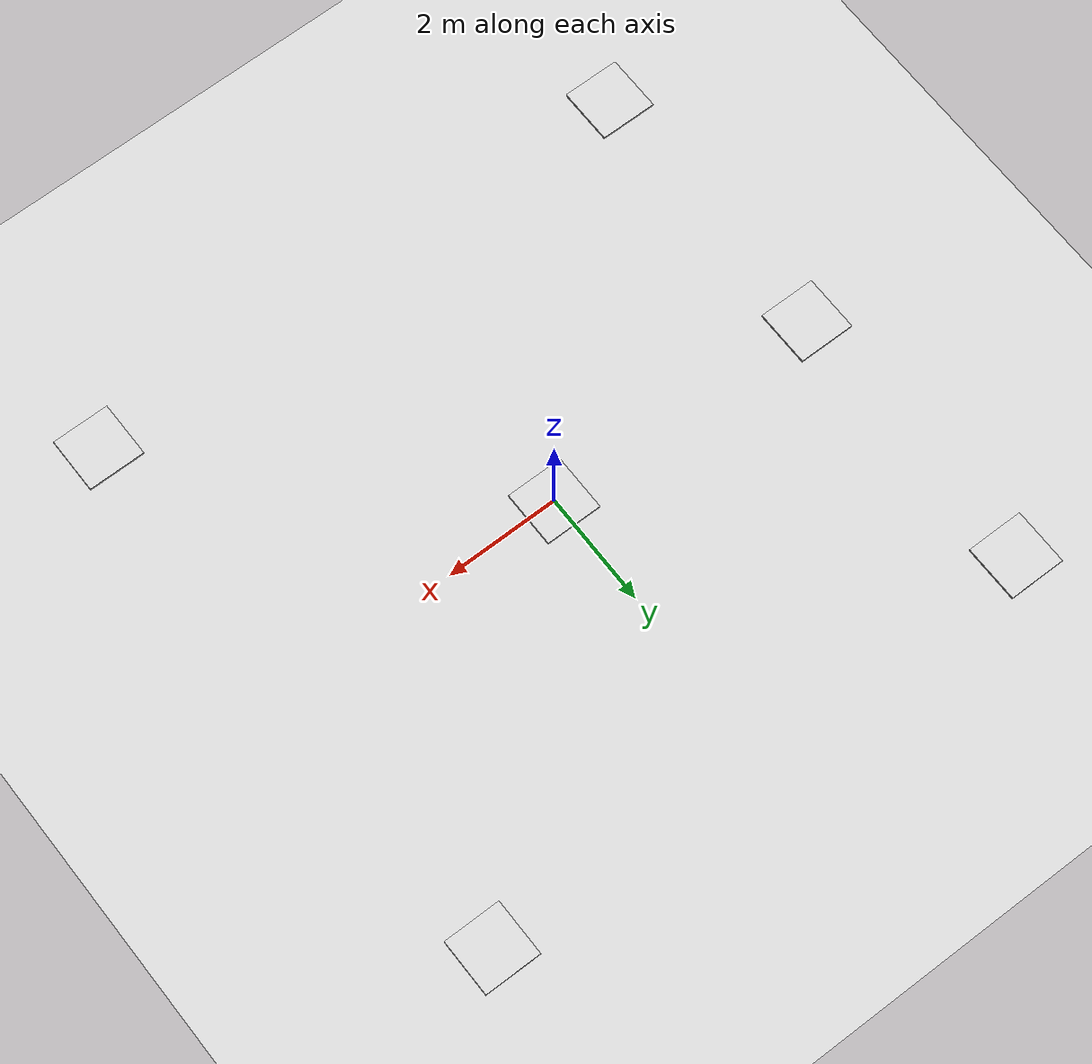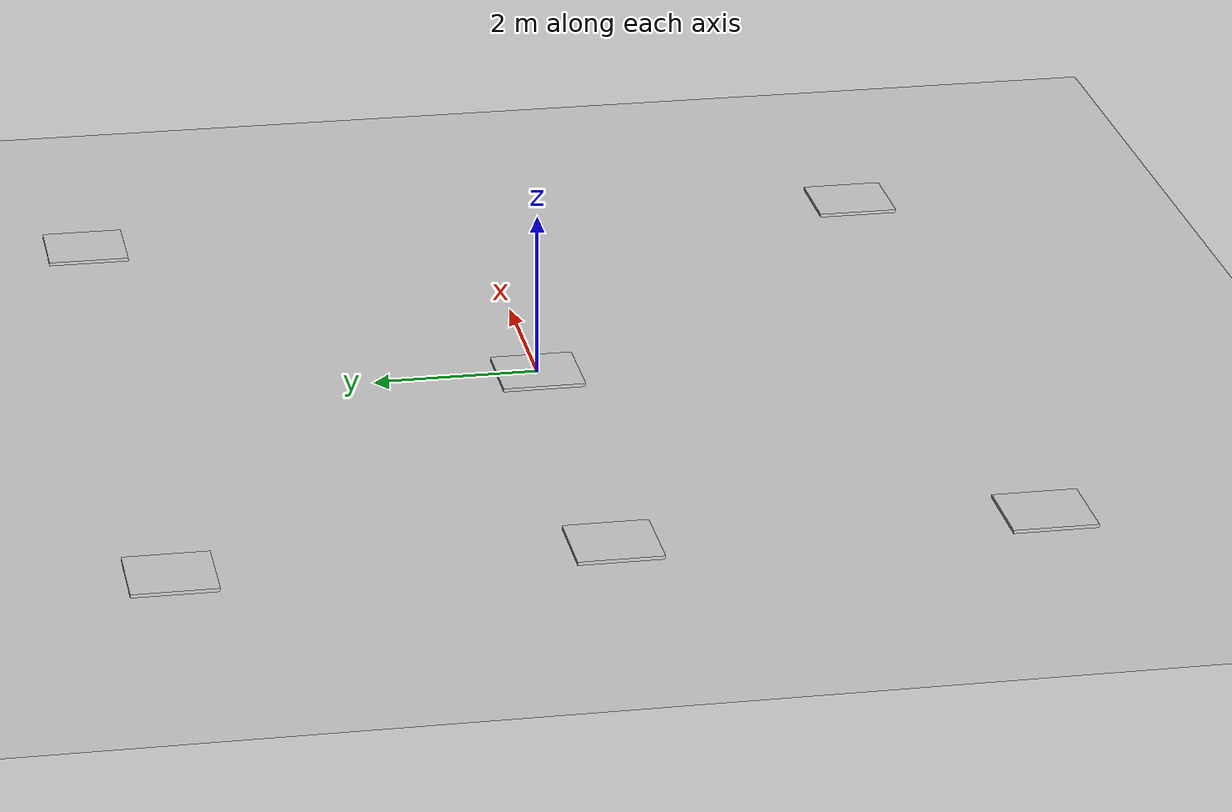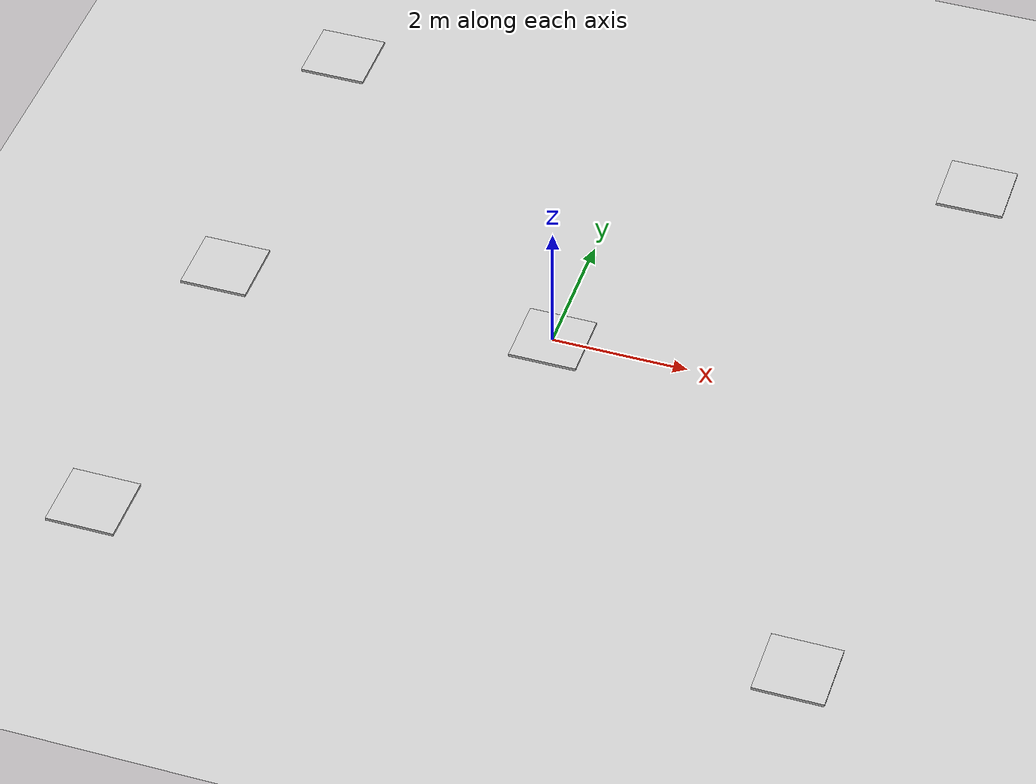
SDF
<?xml version="1.0" ?>
<sdf version="1.8">
  <world name="surveillance_world">
    <plugin
      filename="gz-sim-physics-system"
      name="gz::sim::systems::Physics">
    </plugin>
    <plugin
      filename="gz-sim-sensors-system"
      name="gz::sim::systems::Sensors">
      <render_engine>ogre2</render_engine>
    </plugin>
    <plugin
      filename="gz-sim-scene-broadcaster-system"
      name="gz::sim::systems::SceneBroadcaster">
    </plugin>
    <plugin
      filename="gz-sim-user-commands-system"
      name="gz::sim::systems::UserCommands">
    </plugin>
    <plugin
      filename="BasicSystem"
      name="military_drones_gazebo::BasicSystem">
    </plugin>
    <plugin
      filename="FullSystem"
      name="military_drones_gazebo::FullSystem">
    </plugin>

    <gui fullscreen='false'>
      <plugin name='3D View' filename='GzScene3D'>
        <gz-gui>
          <title>3D View</title>
          <property type='bool' key='showTitleBar'>0</property>
          <property type='string' key='state'>docked</property>
        </gz-gui>
        <engine>ogre2</engine>
        <scene>scene</scene>
        <ambient_light>0.5984631152222222 0.5984631152222222 0.5984631152222222</ambient_light>
        <background_color>0.8984631152222222 0.8984631152222222 0.8984631152222222</background_color>
        <camera_pose>-6 0 6 0 0.5 0</camera_pose>
      </plugin>
      <plugin name='World control' filename='WorldControl'>
        <gz-gui>
          <title>World control</title>
          <property type='bool' key='showTitleBar'>0</property>
          <property type='bool' key='resizable'>0</property>
          <property type='double' key='height'>72</property>
          <property type='double' key='width'>150</property>
          <property type='double' key='z'>1</property>
          <property type='string' key='state'>floating</property>
          <anchors target='3D View'>
            <line own='left' target='left'/>
            <line own='bottom' target='bottom'/>
          </anchors>
        </gz-gui>
        <play_pause>1</play_pause>
        <step>1</step>
        <start_paused>1</start_paused>
      </plugin>
      <plugin name='World stats' filename='WorldStats'>
        <gz-gui>
          <title>World stats</title>
          <property type='bool' key='showTitleBar'>0</property>
          <property type='bool' key='resizable'>0</property>
          <property type='double' key='height'>110</property>
          <property type='double' key='width'>290</property>
          <property type='double' key='z'>1</property>
          <property type='string' key='state'>floating</property>
          <anchors target='3D View'>
            <line own='right' target='right'/>
            <line own='bottom' target='bottom'/>
          </anchors>
        </gz-gui>
        <sim_time>1</sim_time>
        <real_time>1</real_time>
        <real_time_factor>1</real_time_factor>
        <iterations>1</iterations>
      </plugin>
    </gui>

    <light name="sun" type="directional">
      <cast_shadows>true</cast_shadows>
      <pose>0 0 10 0 0 0</pose>
      <diffuse>0.8 0.8 0.8 1</diffuse>
      <specular>0.2 0.2 0.2 1</specular>
      <attenuation>
        <range>1000</range>
        <constant>0.9</constant>
        <linear>0.01</linear>
        <quadratic>0.001</quadratic>
      </attenuation>
      <direction>-0.5 0.1 -0.9</direction>
    </light>

    <model name="ground_plane">
      <static>true</static>
      <link name="link">
        <collision name="collision">
          <geometry>
            <plane>
              <normal>0 0 1</normal>
              <size>100 100</size>
            </plane>
          </geometry>
        </collision>
        <visual name="visual">
          <geometry>
            <plane>
              <normal>0 0 1</normal>
              <size>100 100</size>
            </plane>
          </geometry>
          <material>
            <ambient>0.8 0.8 0.8 1</ambient>
            <diffuse>0.8 0.8 0.8 1</diffuse>
            <specular>0.8 0.8 0.8 1</specular>
          </material>
        </visual>
      </link>
    </model>

    <model name="banana">
      <self_collide>true</self_collide>
      <pose>5 -5 0 0 0 0</pose>
      <include merge="true">
        <uri>package://military_drones_description/models/banana</uri>
      </include>
    </model>

    <model name="car">
      <self_collide>true</self_collide>
      <pose>-5 5 0 0 0 0</pose>
      <include merge="true">
        <uri>package://military_drones_description/models/car</uri>
      </include>
    </model>

    <model name="horse">
      <self_collide>true</self_collide>
      <pose>0 0 0 0 0 0</pose>
      <include merge="true">
        <uri>package://military_drones_description/models/horse</uri>
      </include>
    </model>

    <model name="man">
      <self_collide>true</self_collide>
      <pose>5 5 0 0 0 0</pose>
      <include merge="true">
        <uri>package://military_drones_description/models/man</uri>
      </include>
    </model>

    <model name="pot">
      <self_collide>true</self_collide>
      <pose>-5 0 0 0 0 0</pose>
      <include merge="true">
        <uri>package://military_drones_description/models/pot</uri>
      </include>
    </model>

    <model name="zebra">
      <self_collide>true</self_collide>
      <pose>-5 -5 0 0 0 0</pose>
      <include merge="true">
        <uri>package://military_drones_description/models/zebra</uri>
      </include>
    </model>
  </world>
</sdf>

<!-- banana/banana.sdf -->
<sdf version="1.9">
  <model name="banana">
    <static>true</static>
    <pose>0 0 0 0 0 0</pose>
    <link name="link">
      <collision name="collision">
        <geometry>
          <box>
            <size>1 1 0.05</size>
          </box>
        </geometry>
      </collision>
      <visual name="visual">
        <geometry>
          <box>
            <size>1 1 0.05</size>
          </box>
        </geometry>
        <material>
          <ambient>0.8 0.8 0.8 1</ambient>
          <diffuse>0.8 0.8 0.8 1</diffuse>
          <specular>0.8 0.8 0.8 1</specular>
          <emissive>0 0 0 1</emissive>
          <pbr>
            <metal>
              <albedo_map>package://military_drones_description/models/banana/banana.jpg</albedo_map>
              <normal_map>package://military_drones_description/models/banana/banana.jpg</normal_map>
            </metal>
          </pbr>
        </material>
      </visual>
    </link>
  </model>
</sdf>

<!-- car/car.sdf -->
<sdf version="1.9">
  <model name="car">
    <static>true</static>
    <pose>0 0 0 0 0 0</pose>
    <link name="link">
      <collision name="collision">
        <geometry>
          <box>
            <size>1 1 0.05</size>
          </box>
        </geometry>
      </collision>
      <visual name="visual">
        <geometry>
          <box>
            <size>1 1 0.05</size>
          </box>
        </geometry>
        <material>
          <ambient>0.8 0.8 0.8 1</ambient>
          <diffuse>0.8 0.8 0.8 1</diffuse>
          <specular>0.8 0.8 0.8 1</specular>
          <emissive>0 0 0 1</emissive>
          <pbr>
            <metal>
              <albedo_map>package://military_drones_description/models/car/car.jpg</albedo_map>
              <normal_map>package://military_drones_description/models/car/car.jpg</normal_map>
            </metal>
          </pbr>
        </material>
      </visual>
    </link>
  </model>
</sdf>

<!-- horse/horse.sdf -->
<sdf version="1.9">
  <model name="horse">
    <static>true</static>
    <pose>0 0 0 0 0 0</pose>
    <link name="link">
      <collision name="collision">
        <geometry>
          <box>
            <size>1 1 0.05</size>
          </box>
        </geometry>
      </collision>
      <visual name="visual">
        <geometry>
          <box>
            <size>1 1 0.05</size>
          </box>
        </geometry>
        <material>
          <ambient>0.8 0.8 0.8 1</ambient>
          <diffuse>0.8 0.8 0.8 1</diffuse>
          <specular>0.8 0.8 0.8 1</specular>
          <emissive>0 0 0 1</emissive>
          <pbr>
            <metal>
              <albedo_map>package://military_drones_description/models/horse/horse.jpg</albedo_map>
              <normal_map>package://military_drones_description/models/horse/horse.jpg</normal_map>
            </metal>
          </pbr>
        </material>
      </visual>
    </link>
  </model>
</sdf>

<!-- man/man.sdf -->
<sdf version="1.9">
  <model name="man">
    <static>true</static>
    <pose>0 0 0 0 0 0</pose>
    <link name="link">
      <collision name="collision">
        <geometry>
          <box>
            <size>1 1 0.05</size>
          </box>
        </geometry>
      </collision>
      <visual name="visual">
        <geometry>
          <box>
            <size>1 1 0.05</size>
          </box>
        </geometry>
        <material>
          <ambient>0.8 0.8 0.8 1</ambient>
          <diffuse>0.8 0.8 0.8 1</diffuse>
          <specular>0.8 0.8 0.8 1</specular>
          <emissive>0 0 0 1</emissive>
          <pbr>
            <metal>
              <albedo_map>package://military_drones_description/models/man/man.png</albedo_map>
              <normal_map>package://military_drones_description/models/man/man.png</normal_map>
            </metal>
          </pbr>
        </material>
      </visual>
    </link>
  </model>
</sdf>

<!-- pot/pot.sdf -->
<sdf version="1.9">
  <model name="pot">
    <static>true</static>
    <pose>0 0 0 0 0 0</pose>
    <link name="link">
      <collision name="collision">
        <geometry>
          <box>
            <size>1 1 0.05</size>
          </box>
        </geometry>
      </collision>
      <visual name="visual">
        <geometry>
          <box>
            <size>1 1 0.05</size>
          </box>
        </geometry>
        <material>
          <ambient>0.8 0.8 0.8 1</ambient>
          <diffuse>0.8 0.8 0.8 1</diffuse>
          <specular>0.8 0.8 0.8 1</specular>
          <emissive>0 0 0 1</emissive>
          <pbr>
            <metal>
              <albedo_map>package://military_drones_description/models/pot/pot.jpg</albedo_map>
              <normal_map>package://military_drones_description/models/pot/pot.jpg</normal_map>
            </metal>
          </pbr>
        </material>
      </visual>
    </link>
  </model>
</sdf>

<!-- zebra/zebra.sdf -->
<sdf version="1.9">
  <model name="zebra">
    <static>true</static>
    <pose>0 0 0 0 0 0</pose>
    <link name="link">
      <collision name="collision">
        <geometry>
          <box>
            <size>1 1 0.05</size>
          </box>
        </geometry>
      </collision>
      <visual name="visual">
        <geometry>
          <box>
            <size>1 1 0.05</size>
          </box>
        </geometry>
        <material>
          <ambient>0.8 0.8 0.8 1</ambient>
          <diffuse>0.8 0.8 0.8 1</diffuse>
          <specular>0.8 0.8 0.8 1</specular>
          <emissive>0 0 0 1</emissive>
          <pbr>
            <metal>
              <albedo_map>package://military_drones_description/models/zebra/zebra.jpg</albedo_map>
              <normal_map>package://military_drones_description/models/zebra/zebra.jpg</normal_map>
            </metal>
          </pbr>
        </material>
      </visual>
    </link>
  </model>
</sdf>
